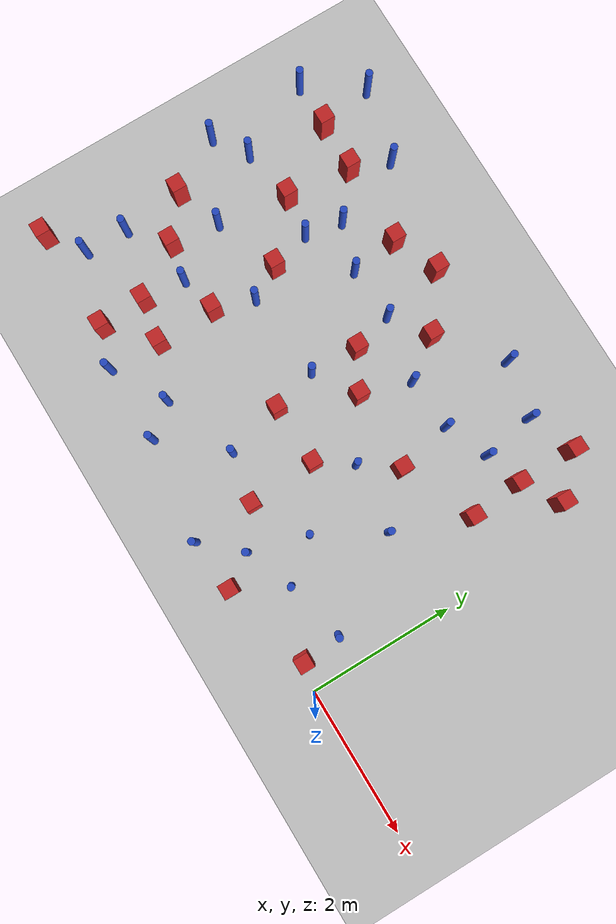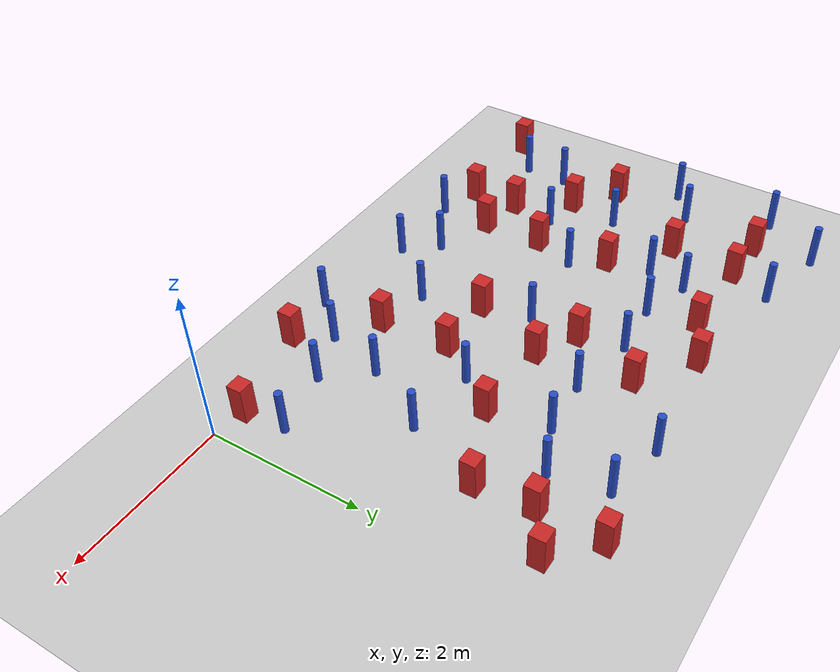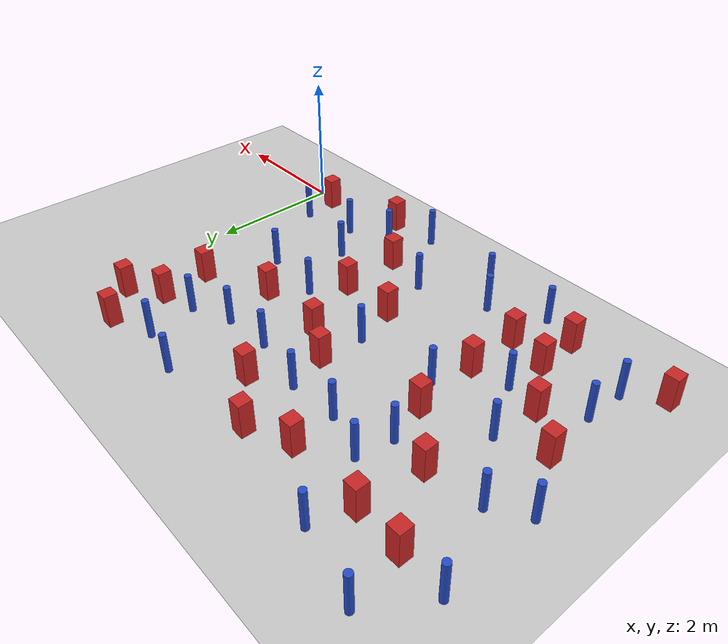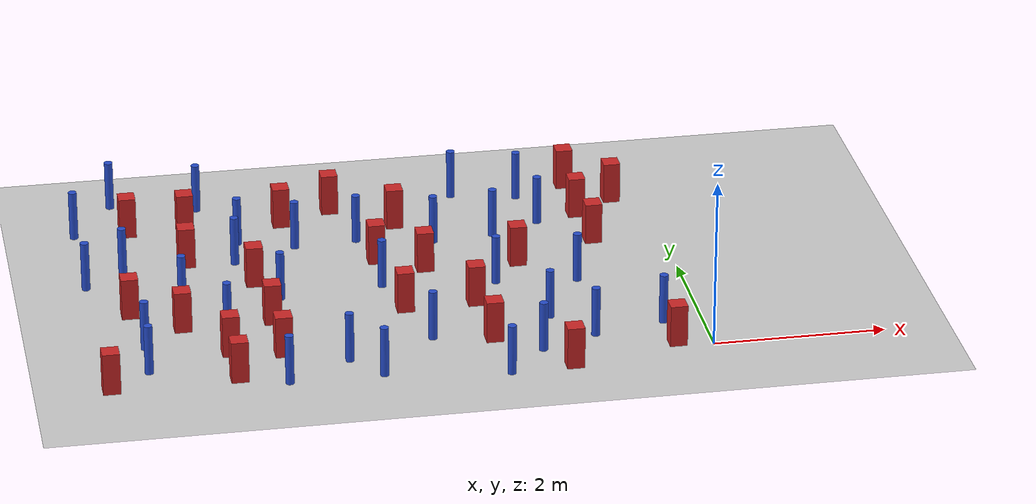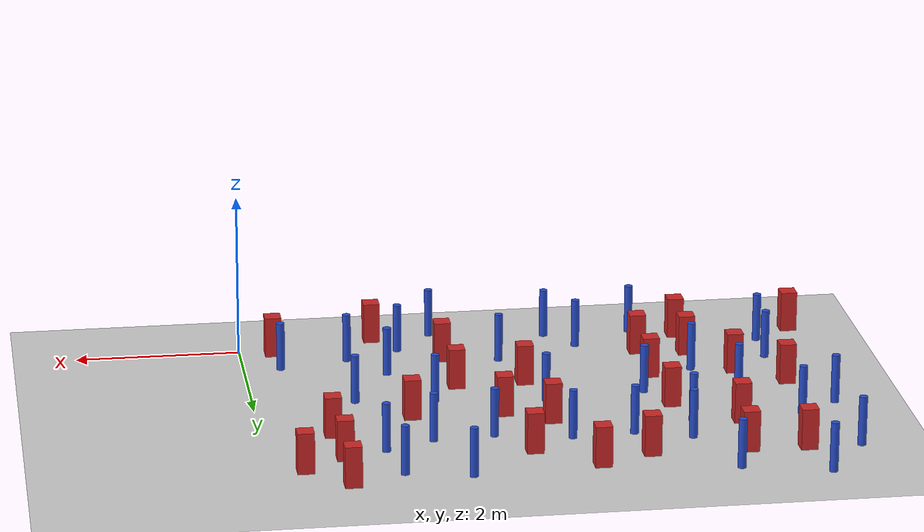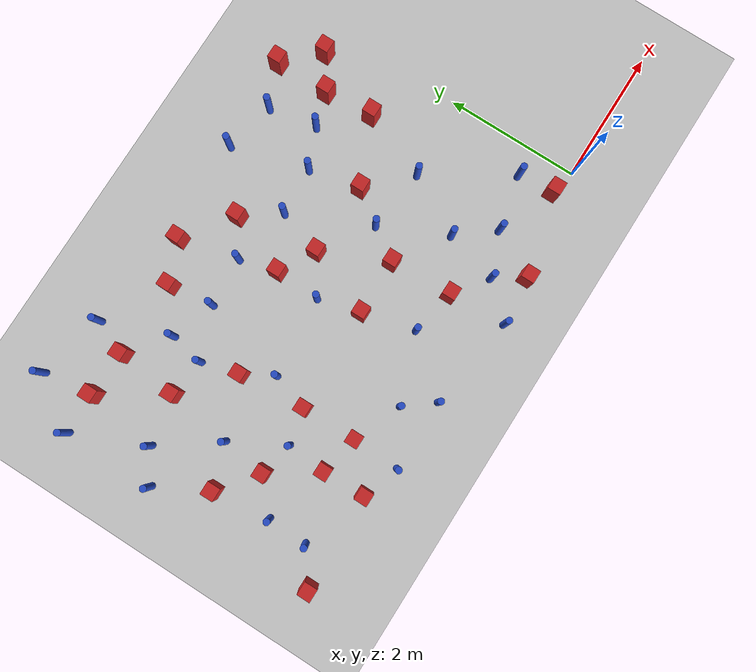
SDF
<sdf version="1.6">
 <world name="default">
  <model name="ground_plane">
   <static>1</static>
   <link name="link">
    <collision name="collision">
     <geometry><plane><normal>0 0 1</normal><size>100 100</size></plane></geometry>
     <surface><friction><ode><mu>100</mu><mu2>50</mu2></ode></friction></surface>
    </collision>
    <visual name="visual">
     <cast_shadows>0</cast_shadows>
     <geometry><plane><normal>0 0 1</normal><size>100 100</size></plane></geometry>
     <material>
      <ambient>1.0 1.0 1.0 1.0</ambient>
      <diffuse>0.8 0.8 0.8 1.0</diffuse>
      <specular>0.01 0.01 0.01 1.000000</specular>
     </material>
    </visual>
   </link>
  </model>
  <model name="pole_obstacle1">
   <static>true</static>
   <pose>-6.42929872795 2.91907934474 7.38925637345e-09 -8.47170692798e-08 1.24976764937e-08 -1.74513093023e-07</pose>
   <link name="link">
    <pose>0 0 0.3 0 -0 0</pose>
    <inertial>
     <mass>1</mass>
     <inertia><ixx>0.145833</ixx><ixy>0</ixy><ixz>0</ixz><iyy>0.145833</iyy><iyz>0</iyz><izz>0.125</izz></inertia>
    </inertial>
    <collision name="collision">
     <geometry><cylinder><radius>0.05</radius><length>.6</length></cylinder></geometry>
    </collision>
    <visual name="visual">
     <geometry><cylinder><radius>0.05</radius><length>.6</length></cylinder></geometry>
     <material>
      <script><name>Gazebo/Blue</name><uri>file://media/materials/scripts/gazebo.material</uri></script>
     </material>
    </visual>
   </link>
  </model>
  <model name="square_post_obstacle3">
   <static>true</static>
   <pose>-3.45899502006 2.76230181526 1.91545236811e-07 -7.35059704564e-06 1.12565212e-07 2.39332434364e-05</pose>
   <link name="link">
    <pose>0 0 0.25 0 -0 0</pose>
    <inertial>
     <mass>100</mass>
     <inertia>
      <ixx>0.166667</ixx>
      <ixy>0</ixy>
      <ixz>0</ixz>
      <iyy>0.166667</iyy>
      <iyz>0</iyz>
      <izz>0.166667</izz>
     </inertia>
    </inertial>
    <collision name="collision"><geometry><box><size>.2 .2 .5</size></box></geometry></collision>
    <visual name="visual">
     <geometry><box><size>.2 .2 .5</size></box></geometry>
     <material>
      <script><name>Gazebo/Red</name><uri>file://media/materials/scripts/gazebo.material</uri></script>
     </material>
    </visual>
   </link>
  </model>
  <model name="square_post_obstacle9">
   <static>true</static>
   <pose>-0.905078219884 3.59624943873 1.91545236811e-07 -7.35059704564e-06 1.12565212e-07 2.39332434364e-05</pose>
   <link name="link">
    <pose>0 0 0.25 0 -0 0</pose>
    <inertial>
     <mass>100</mass>
     <inertia>
      <ixx>0.166667</ixx>
      <ixy>0</ixy>
      <ixz>0</ixz>
      <iyy>0.166667</iyy>
      <iyz>0</iyz>
      <izz>0.166667</izz>
     </inertia>
    </inertial>
    <collision name="collision"><geometry><box><size>.2 .2 .5</size></box></geometry></collision>
    <visual name="visual">
     <geometry><box><size>.2 .2 .5</size></box></geometry>
     <material>
      <script><name>Gazebo/Red</name><uri>file://media/materials/scripts/gazebo.material</uri></script>
     </material>
    </visual>
   </link>
  </model>
  <model name="square_post_obstacle13">
   <static>true</static>
   <pose>-3.32114091501 1.47154276022 1.91545236811e-07 -7.35059704564e-06 1.12565212e-07 2.39332434364e-05</pose>
   <link name="link">
    <pose>0 0 0.25 0 -0 0</pose>
    <inertial>
     <mass>100</mass>
     <inertia>
      <ixx>0.166667</ixx>
      <ixy>0</ixy>
      <ixz>0</ixz>
      <iyy>0.166667</iyy>
      <iyz>0</iyz>
      <izz>0.166667</izz>
     </inertia>
    </inertial>
    <collision name="collision"><geometry><box><size>.2 .2 .5</size></box></geometry></collision>
    <visual name="visual">
     <geometry><box><size>.2 .2 .5</size></box></geometry>
     <material>
      <script><name>Gazebo/Red</name><uri>file://media/materials/scripts/gazebo.material</uri></script>
     </material>
    </visual>
   </link>
  </model>
  <model name="pole_obstacle9">
   <static>true</static>
   <pose>-4.87674963518 -0.105442005914 7.38925637345e-09 -8.47170692799e-08 1.24976765039e-08 -1.74513093019e-07</pose>
   <link name="link">
    <pose>0 0 0.3 0 -0 0</pose>
    <inertial>
     <mass>1</mass>
     <inertia><ixx>0.145833</ixx><ixy>0</ixy><ixz>0</ixz><iyy>0.145833</iyy><iyz>0</iyz><izz>0.125</izz></inertia>
    </inertial>
    <collision name="collision">
     <geometry><cylinder><radius>0.05</radius><length>.6</length></cylinder></geometry>
    </collision>
    <visual name="visual">
     <geometry><cylinder><radius>0.05</radius><length>.6</length></cylinder></geometry>
     <material>
      <script><name>Gazebo/Blue</name><uri>file://media/materials/scripts/gazebo.material</uri></script>
     </material>
    </visual>
   </link>
  </model>
  <model name="pole_obstacle14">
   <static>true</static>
   <pose>-1.28186081582 0.451107271071 7.38925637345e-09 -8.47170692799e-08 1.24976765052e-08 -1.74513093018e-07</pose>
   <link name="link">
    <pose>0 0 0.3 0 -0 0</pose>
    <inertial>
     <mass>1</mass>
     <inertia><ixx>0.145833</ixx><ixy>0</ixy><ixz>0</ixz><iyy>0.145833</iyy><iyz>0</iyz><izz>0.125</izz></inertia>
    </inertial>
    <collision name="collision">
     <geometry><cylinder><radius>0.05</radius><length>.6</length></cylinder></geometry>
    </collision>
    <visual name="visual">
     <geometry><cylinder><radius>0.05</radius><length>.6</length></cylinder></geometry>
     <material>
      <script><name>Gazebo/Blue</name><uri>file://media/materials/scripts/gazebo.material</uri></script>
     </material>
    </visual>
   </link>
  </model>
  <model name="square_post_obstacle27">
   <static>true</static>
   <pose>-4.94714250226 2.41971602822 1.91545236811e-07 -7.35059704564e-06 1.12565212e-07 2.39332434364e-05</pose>
   <link name="link">
    <pose>0 0 0.25 0 -0 0</pose>
    <inertial>
     <mass>100</mass>
     <inertia>
      <ixx>0.166667</ixx>
      <ixy>0</ixy>
      <ixz>0</ixz>
      <iyy>0.166667</iyy>
      <iyz>0</iyz>
      <izz>0.166667</izz>
     </inertia>
    </inertial>
    <collision name="collision"><geometry><box><size>.2 .2 .5</size></box></geometry></collision>
    <visual name="visual">
     <geometry><box><size>.2 .2 .5</size></box></geometry>
     <material>
      <script><name>Gazebo/Red</name><uri>file://media/materials/scripts/gazebo.material</uri></script>
     </material>
    </visual>
   </link>
  </model>
  <model name="square_post_obstacle29">
   <static>true</static>
   <pose>-5.66795134224 3.04842639544 1.91545236811e-07 -7.35059704564e-06 1.12565212e-07 2.39332434364e-05</pose>
   <link name="link">
    <pose>0 0 0.25 0 -0 0</pose>
    <inertial>
     <mass>100</mass>
     <inertia>
      <ixx>0.166667</ixx>
      <ixy>0</ixy>
      <ixz>0</ixz>
      <iyy>0.166667</iyy>
      <iyz>0</iyz>
      <izz>0.166667</izz>
     </inertia>
    </inertial>
    <collision name="collision"><geometry><box><size>.2 .2 .5</size></box></geometry></collision>
    <visual name="visual">
     <geometry><box><size>.2 .2 .5</size></box></geometry>
     <material>
      <script><name>Gazebo/Red</name><uri>file://media/materials/scripts/gazebo.material</uri></script>
     </material>
    </visual>
   </link>
  </model>
  <model name="pole_obstacle23">
   <static>true</static>
   <pose>-6.37870326389 1.003187122 7.38925637345e-09 -8.47170692801e-08 1.24976765139e-08 -1.74513093014e-07</pose>
   <link name="link">
    <pose>0 0 0.3 0 -0 0</pose>
    <inertial>
     <mass>1</mass>
     <inertia><ixx>0.145833</ixx><ixy>0</ixy><ixz>0</ixz><iyy>0.145833</iyy><iyz>0</iyz><izz>0.125</izz></inertia>
    </inertial>
    <collision name="collision">
     <geometry><cylinder><radius>0.05</radius><length>.6</length></cylinder></geometry>
    </collision>
    <visual name="visual">
     <geometry><cylinder><radius>0.05</radius><length>.6</length></cylinder></geometry>
     <material>
      <script><name>Gazebo/Blue</name><uri>file://media/materials/scripts/gazebo.material</uri></script>
     </material>
    </visual>
   </link>
  </model>
  <model name="square_post_obstacle34">
   <static>true</static>
   <pose>-4.85122570058 0.610705041201 1.91545236811e-07 -7.35059704564e-06 1.12565212e-07 2.39332434364e-05</pose>
   <link name="link">
    <pose>0 0 0.25 0 -0 0</pose>
    <inertial>
     <mass>100</mass>
     <inertia>
      <ixx>0.166667</ixx>
      <ixy>0</ixy>
      <ixz>0</ixz>
      <iyy>0.166667</iyy>
      <iyz>0</iyz>
      <izz>0.166667</izz>
     </inertia>
    </inertial>
    <collision name="collision"><geometry><box><size>.2 .2 .5</size></box></geometry></collision>
    <visual name="visual">
     <geometry><box><size>.2 .2 .5</size></box></geometry>
     <material>
      <script><name>Gazebo/Red</name><uri>file://media/materials/scripts/gazebo.material</uri></script>
     </material>
    </visual>
   </link>
  </model>
  <model name="pole_obstacle31">
   <static>true</static>
   <pose>-2.3887514129 -0.302699735705 7.38925637345e-09 -8.471706928e-08 1.24976765172e-08 -1.74513093013e-07</pose>
   <link name="link">
    <pose>0 0 0.3 0 -0 0</pose>
    <inertial>
     <mass>1</mass>
     <inertia><ixx>0.145833</ixx><ixy>0</ixy><ixz>0</ixz><iyy>0.145833</iyy><iyz>0</iyz><izz>0.125</izz></inertia>
    </inertial>
    <collision name="collision">
     <geometry><cylinder><radius>0.05</radius><length>.6</length></cylinder></geometry>
    </collision>
    <visual name="visual">
     <geometry><cylinder><radius>0.05</radius><length>.6</length></cylinder></geometry>
     <material>
      <script><name>Gazebo/Blue</name><uri>file://media/materials/scripts/gazebo.material</uri></script>
     </material>
    </visual>
   </link>
  </model>
  <model name="square_post_obstacle35">
   <static>true</static>
   <pose>-0.411803076474 3.93008149344 1.91545236811e-07 -7.35059704564e-06 1.12565212e-07 2.39332434364e-05</pose>
   <link name="link">
    <pose>0 0 0.25 0 -0 0</pose>
    <inertial>
     <mass>100</mass>
     <inertia>
      <ixx>0.166667</ixx>
      <ixy>0</ixy>
      <ixz>0</ixz>
      <iyy>0.166667</iyy>
      <iyz>0</iyz>
      <izz>0.166667</izz>
     </inertia>
    </inertial>
    <collision name="collision"><geometry><box><size>.2 .2 .5</size></box></geometry></collision>
    <visual name="visual">
     <geometry><box><size>.2 .2 .5</size></box></geometry>
     <material>
      <script><name>Gazebo/Red</name><uri>file://media/materials/scripts/gazebo.material</uri></script>
     </material>
    </visual>
   </link>
  </model>
  <model name="pole_obstacle34">
   <static>true</static>
   <pose>-1.2226400308 1.85764702001 7.38925637345e-09 -8.471706928e-08 1.24976765079e-08 -1.74513093017e-07</pose>
   <link name="link">
    <pose>0 0 0.3 0 -0 0</pose>
    <inertial>
     <mass>1</mass>
     <inertia><ixx>0.145833</ixx><ixy>0</ixy><ixz>0</ixz><iyy>0.145833</iyy><iyz>0</iyz><izz>0.125</izz></inertia>
    </inertial>
    <collision name="collision">
     <geometry><cylinder><radius>0.05</radius><length>.6</length></cylinder></geometry>
    </collision>
    <visual name="visual">
     <geometry><cylinder><radius>0.05</radius><length>.6</length></cylinder></geometry>
     <material>
      <script><name>Gazebo/Blue</name><uri>file://media/materials/scripts/gazebo.material</uri></script>
     </material>
    </visual>
   </link>
  </model>
  <model name="square_post_obstacle37">
   <static>true</static>
   <pose>-6.26416165376 3.97510742919 1.91545236811e-07 -7.35059704564e-06 1.12565212e-07 2.39332434364e-05</pose>
   <link name="link">
    <pose>0 0 0.25 0 -0 0</pose>
    <inertial>
     <mass>100</mass>
     <inertia>
      <ixx>0.166667</ixx>
      <ixy>0</ixy>
      <ixz>0</ixz>
      <iyy>0.166667</iyy>
      <iyz>0</iyz>
      <izz>0.166667</izz>
     </inertia>
    </inertial>
    <collision name="collision"><geometry><box><size>.2 .2 .5</size></box></geometry></collision>
    <visual name="visual">
     <geometry><box><size>.2 .2 .5</size></box></geometry>
     <material>
      <script><name>Gazebo/Red</name><uri>file://media/materials/scripts/gazebo.material</uri></script>
     </material>
    </visual>
   </link>
  </model>
  <model name="pole_obstacle38">
   <static>true</static>
   <pose>-1.53077043023 4.16529390376 7.38925637345e-09 -8.47170692799e-08 1.24976765033e-08 -1.74513093018e-07</pose>
   <link name="link">
    <pose>0 0 0.3 0 -0 0</pose>
    <inertial>
     <mass>1</mass>
     <inertia><ixx>0.145833</ixx><ixy>0</ixy><ixz>0</ixz><iyy>0.145833</iyy><iyz>0</iyz><izz>0.125</izz></inertia>
    </inertial>
    <collision name="collision">
     <geometry><cylinder><radius>0.05</radius><length>.6</length></cylinder></geometry>
    </collision>
    <visual name="visual">
     <geometry><cylinder><radius>0.05</radius><length>.6</length></cylinder></geometry>
     <material>
      <script><name>Gazebo/Blue</name><uri>file://media/materials/scripts/gazebo.material</uri></script>
     </material>
    </visual>
   </link>
  </model>
  <model name="pole_obstacle46">
   <static>true</static>
   <pose>-6.39907039299 0.407935088364 7.38925637345e-09 -8.47170692798e-08 1.24976765003e-08 -1.7451309302e-07</pose>
   <link name="link">
    <pose>0 0 0.3 0 -0 0</pose>
    <inertial>
     <mass>1</mass>
     <inertia><ixx>0.145833</ixx><ixy>0</ixy><ixz>0</ixz><iyy>0.145833</iyy><iyz>0</iyz><izz>0.125</izz></inertia>
    </inertial>
    <collision name="collision">
     <geometry><cylinder><radius>0.05</radius><length>.6</length></cylinder></geometry>
    </collision>
    <visual name="visual">
     <geometry><cylinder><radius>0.05</radius><length>.6</length></cylinder></geometry>
     <material>
      <script><name>Gazebo/Blue</name><uri>file://media/materials/scripts/gazebo.material</uri></script>
     </material>
    </visual>
   </link>
  </model>
  <model name="square_post_obstacle56">
   <static>true</static>
   <pose>-5.41984564283 0.0929354636823 1.91545236811e-07 -7.35059704564e-06 1.12565212e-07 2.39332434364e-05</pose>
   <link name="link">
    <pose>0 0 0.25 0 -0 0</pose>
    <inertial>
     <mass>100</mass>
     <inertia>
      <ixx>0.166667</ixx>
      <ixy>0</ixy>
      <ixz>0</ixz>
      <iyy>0.166667</iyy>
      <iyz>0</iyz>
      <izz>0.166667</izz>
     </inertia>
    </inertial>
    <collision name="collision"><geometry><box><size>.2 .2 .5</size></box></geometry></collision>
    <visual name="visual">
     <geometry><box><size>.2 .2 .5</size></box></geometry>
     <material>
      <script><name>Gazebo/Red</name><uri>file://media/materials/scripts/gazebo.material</uri></script>
     </material>
    </visual>
   </link>
  </model>
  <model name="pole_obstacle59">
   <static>true</static>
   <pose>-3.80341587537 -0.099427019695 7.38925637345e-09 -8.471706928e-08 1.24976765088e-08 -1.74513093017e-07</pose>
   <link name="link">
    <pose>0 0 0.3 0 -0 0</pose>
    <inertial>
     <mass>1</mass>
     <inertia><ixx>0.145833</ixx><ixy>0</ixy><ixz>0</ixz><iyy>0.145833</iyy><iyz>0</iyz><izz>0.125</izz></inertia>
    </inertial>
    <collision name="collision">
     <geometry><cylinder><radius>0.05</radius><length>.6</length></cylinder></geometry>
    </collision>
    <visual name="visual">
     <geometry><cylinder><radius>0.05</radius><length>.6</length></cylinder></geometry>
     <material>
      <script><name>Gazebo/Blue</name><uri>file://media/materials/scripts/gazebo.material</uri></script>
     </material>
    </visual>
   </link>
  </model>
  <model name="pole_obstacle60">
   <static>true</static>
   <pose>-5.37764012385 4.48237026212 7.38925637345e-09 -8.47170692796e-08 1.24976764786e-08 -1.74513093032e-07</pose>
   <link name="link">
    <pose>0 0 0.3 0 -0 0</pose>
    <inertial>
     <mass>1</mass>
     <inertia><ixx>0.145833</ixx><ixy>0</ixy><ixz>0</ixz><iyy>0.145833</iyy><iyz>0</iyz><izz>0.125</izz></inertia>
    </inertial>
    <collision name="collision">
     <geometry><cylinder><radius>0.05</radius><length>.6</length></cylinder></geometry>
    </collision>
    <visual name="visual">
     <geometry><cylinder><radius>0.05</radius><length>.6</length></cylinder></geometry>
     <material>
      <script><name>Gazebo/Blue</name><uri>file://media/materials/scripts/gazebo.material</uri></script>
     </material>
    </visual>
   </link>
  </model>
  <model name="square_post_obstacle71">
   <static>true</static>
   <pose>-6.46181713769 1.85665440524 1.91545236811e-07 -7.35059704564e-06 1.12565212e-07 2.39332434364e-05</pose>
   <link name="link">
    <pose>0 0 0.25 0 -0 0</pose>
    <inertial>
     <mass>100</mass>
     <inertia>
      <ixx>0.166667</ixx>
      <ixy>0</ixy>
      <ixz>0</ixz>
      <iyy>0.166667</iyy>
      <iyz>0</iyz>
      <izz>0.166667</izz>
     </inertia>
    </inertial>
    <collision name="collision"><geometry><box><size>.2 .2 .5</size></box></geometry></collision>
    <visual name="visual">
     <geometry><box><size>.2 .2 .5</size></box></geometry>
     <material>
      <script><name>Gazebo/Red</name><uri>file://media/materials/scripts/gazebo.material</uri></script>
     </material>
    </visual>
   </link>
  </model>
  <model name="pole_obstacle71">
   <static>true</static>
   <pose>-5.10175337997 2.97943975496 7.38925637345e-09 -8.47170692798e-08 1.24976764937e-08 -1.74513093023e-07</pose>
   <link name="link">
    <pose>0 0 0.3 0 -0 0</pose>
    <inertial>
     <mass>1</mass>
     <inertia><ixx>0.145833</ixx><ixy>0</ixy><ixz>0</ixz><iyy>0.145833</iyy><iyz>0</iyz><izz>0.125</izz></inertia>
    </inertial>
    <collision name="collision">
     <geometry><cylinder><radius>0.05</radius><length>.6</length></cylinder></geometry>
    </collision>
    <visual name="visual">
     <geometry><cylinder><radius>0.05</radius><length>.6</length></cylinder></geometry>
     <material>
      <script><name>Gazebo/Blue</name><uri>file://media/materials/scripts/gazebo.material</uri></script>
     </material>
    </visual>
   </link>
  </model>
  <model name="pole_obstacle86">
   <static>true</static>
   <pose>-2.71128011608 3.14274720544 7.38925637345e-09 -8.47170692798e-08 1.24976764939e-08 -1.74513093025e-07</pose>
   <link name="link">
    <pose>0 0 0.3 0 -0 0</pose>
    <inertial>
     <mass>1</mass>
     <inertia><ixx>0.145833</ixx><ixy>0</ixy><ixz>0</ixz><iyy>0.145833</iyy><iyz>0</iyz><izz>0.125</izz></inertia>
    </inertial>
    <collision name="collision">
     <geometry><cylinder><radius>0.05</radius><length>.6</length></cylinder></geometry>
    </collision>
    <visual name="visual">
     <geometry><cylinder><radius>0.05</radius><length>.6</length></cylinder></geometry>
     <material>
      <script><name>Gazebo/Blue</name><uri>file://media/materials/scripts/gazebo.material</uri></script>
     </material>
    </visual>
   </link>
  </model>
  <model name="pole_obstacle91">
   <static>true</static>
   <pose>-1.98816987569 3.19674884291 7.38925637345e-09 -8.471706928e-08 1.24976765192e-08 -1.7451309301e-07</pose>
   <link name="link">
    <pose>0 0 0.3 0 -0 0</pose>
    <inertial>
     <mass>1</mass>
     <inertia><ixx>0.145833</ixx><ixy>0</ixy><ixz>0</ixz><iyy>0.145833</iyy><iyz>0</iyz><izz>0.125</izz></inertia>
    </inertial>
    <collision name="collision">
     <geometry><cylinder><radius>0.05</radius><length>.6</length></cylinder></geometry>
    </collision>
    <visual name="visual">
     <geometry><cylinder><radius>0.05</radius><length>.6</length></cylinder></geometry>
     <material>
      <script><name>Gazebo/Blue</name><uri>file://media/materials/scripts/gazebo.material</uri></script>
     </material>
    </visual>
   </link>
  </model>
  <model name="square_post_obstacle88">
   <static>true</static>
   <pose>-4.86676787025 1.42821196705 1.91545236811e-07 -7.35059704564e-06 1.12565212e-07 2.39332434364e-05</pose>
   <link name="link">
    <pose>0 0 0.25 0 -0 0</pose>
    <inertial>
     <mass>100</mass>
     <inertia>
      <ixx>0.166667</ixx>
      <ixy>0</ixy>
      <ixz>0</ixz>
      <iyy>0.166667</iyy>
      <iyz>0</iyz>
      <izz>0.166667</izz>
     </inertia>
    </inertial>
    <collision name="collision"><geometry><box><size>.2 .2 .5</size></box></geometry></collision>
    <visual name="visual">
     <geometry><box><size>.2 .2 .5</size></box></geometry>
     <material>
      <script><name>Gazebo/Red</name><uri>file://media/materials/scripts/gazebo.material</uri></script>
     </material>
    </visual>
   </link>
  </model>
  <model name="square_post_obstacle89">
   <static>true</static>
   <pose>-0.843859062542 2.87030625884 1.91545236811e-07 -7.35059704564e-06 1.12565212e-07 2.39332434364e-05</pose>
   <link name="link">
    <pose>0 0 0.25 0 -0 0</pose>
    <inertial>
     <mass>100</mass>
     <inertia>
      <ixx>0.166667</ixx>
      <ixy>0</ixy>
      <ixz>0</ixz>
      <iyy>0.166667</iyy>
      <iyz>0</iyz>
      <izz>0.166667</izz>
     </inertia>
    </inertial>
    <collision name="collision"><geometry><box><size>.2 .2 .5</size></box></geometry></collision>
    <visual name="visual">
     <geometry><box><size>.2 .2 .5</size></box></geometry>
     <material>
      <script><name>Gazebo/Red</name><uri>file://media/materials/scripts/gazebo.material</uri></script>
     </material>
    </visual>
   </link>
  </model>
  <model name="square_post_obstacle91">
   <static>true</static>
   <pose>-4.43189016322 3.92689744343 1.91545236811e-07 -7.35059704564e-06 1.12565212e-07 2.39332434364e-05</pose>
   <link name="link">
    <pose>0 0 0.25 0 -0 0</pose>
    <inertial>
     <mass>100</mass>
     <inertia>
      <ixx>0.166667</ixx>
      <ixy>0</ixy>
      <ixz>0</ixz>
      <iyy>0.166667</iyy>
      <iyz>0</iyz>
      <izz>0.166667</izz>
     </inertia>
    </inertial>
    <collision name="collision"><geometry><box><size>.2 .2 .5</size></box></geometry></collision>
    <visual name="visual">
     <geometry><box><size>.2 .2 .5</size></box></geometry>
     <material>
      <script><name>Gazebo/Red</name><uri>file://media/materials/scripts/gazebo.material</uri></script>
     </material>
    </visual>
   </link>
  </model>
  <model name="pole_obstacle106">
   <static>true</static>
   <pose>-6.39444204987 4.7351012062 7.38925637345e-09 -8.47170692796e-08 1.24976764786e-08 -1.74513093032e-07</pose>
   <link name="link">
    <pose>0 0 0.3 0 -0 0</pose>
    <inertial>
     <mass>1</mass>
     <inertia><ixx>0.145833</ixx><ixy>0</ixy><ixz>0</ixz><iyy>0.145833</iyy><iyz>0</iyz><izz>0.125</izz></inertia>
    </inertial>
    <collision name="collision">
     <geometry><cylinder><radius>0.05</radius><length>.6</length></cylinder></geometry>
    </collision>
    <visual name="visual">
     <geometry><cylinder><radius>0.05</radius><length>.6</length></cylinder></geometry>
     <material>
      <script><name>Gazebo/Blue</name><uri>file://media/materials/scripts/gazebo.material</uri></script>
     </material>
    </visual>
   </link>
  </model>
  <model name="square_post_obstacle94">
   <static>true</static>
   <pose>-5.43924046131 0.729255636724 1.91545236811e-07 -7.35059704564e-06 1.12565212e-07 2.39332434364e-05</pose>
   <link name="link">
    <pose>0 0 0.25 0 -0 0</pose>
    <inertial>
     <mass>100</mass>
     <inertia>
      <ixx>0.166667</ixx>
      <ixy>0</ixy>
      <ixz>0</ixz>
      <iyy>0.166667</iyy>
      <iyz>0</iyz>
      <izz>0.166667</izz>
     </inertia>
    </inertial>
    <collision name="collision"><geometry><box><size>.2 .2 .5</size></box></geometry></collision>
    <visual name="visual">
     <geometry><box><size>.2 .2 .5</size></box></geometry>
     <material>
      <script><name>Gazebo/Red</name><uri>file://media/materials/scripts/gazebo.material</uri></script>
     </material>
    </visual>
   </link>
  </model>
  <model name="pole_obstacle113">
   <static>true</static>
   <pose>-3.48798788129 2.09356775168 7.38925637345e-09 -8.47170692798e-08 1.24976764939e-08 -1.74513093025e-07</pose>
   <link name="link">
    <pose>0 0 0.3 0 -0 0</pose>
    <inertial>
     <mass>1</mass>
     <inertia><ixx>0.145833</ixx><ixy>0</ixy><ixz>0</ixz><iyy>0.145833</iyy><iyz>0</iyz><izz>0.125</izz></inertia>
    </inertial>
    <collision name="collision">
     <geometry><cylinder><radius>0.05</radius><length>.6</length></cylinder></geometry>
    </collision>
    <visual name="visual">
     <geometry><cylinder><radius>0.05</radius><length>.6</length></cylinder></geometry>
     <material>
      <script><name>Gazebo/Blue</name><uri>file://media/materials/scripts/gazebo.material</uri></script>
     </material>
    </visual>
   </link>
  </model>
  <model name="pole_obstacle115">
   <static>true</static>
   <pose>-5.00482750813 3.49224283118 7.38925637345e-09 -8.47170692798e-08 1.24976764937e-08 -1.74513093023e-07</pose>
   <link name="link">
    <pose>0 0 0.3 0 -0 0</pose>
    <inertial>
     <mass>1</mass>
     <inertia><ixx>0.145833</ixx><ixy>0</ixy><ixz>0</ixz><iyy>0.145833</iyy><iyz>0</iyz><izz>0.125</izz></inertia>
    </inertial>
    <collision name="collision">
     <geometry><cylinder><radius>0.05</radius><length>.6</length></cylinder></geometry>
    </collision>
    <visual name="visual">
     <geometry><cylinder><radius>0.05</radius><length>.6</length></cylinder></geometry>
     <material>
      <script><name>Gazebo/Blue</name><uri>file://media/materials/scripts/gazebo.material</uri></script>
     </material>
    </visual>
   </link>
  </model>
  <model name="pole_obstacle117">
   <static>true</static>
   <pose>-3.12382348454 0.686818389979 7.38925637345e-09 -8.47170692796e-08 1.24976764768e-08 -1.74513093035e-07</pose>
   <link name="link">
    <pose>0 0 0.3 0 -0 0</pose>
    <inertial>
     <mass>1</mass>
     <inertia><ixx>0.145833</ixx><ixy>0</ixy><ixz>0</ixz><iyy>0.145833</iyy><iyz>0</iyz><izz>0.125</izz></inertia>
    </inertial>
    <collision name="collision">
     <geometry><cylinder><radius>0.05</radius><length>.6</length></cylinder></geometry>
    </collision>
    <visual name="visual">
     <geometry><cylinder><radius>0.05</radius><length>.6</length></cylinder></geometry>
     <material>
      <script><name>Gazebo/Blue</name><uri>file://media/materials/scripts/gazebo.material</uri></script>
     </material>
    </visual>
   </link>
  </model>
  <model name="square_post_obstacle115">
   <static>true</static>
   <pose>-1.83066203352 2.4305576948 1.91545236811e-07 -7.35059704564e-06 1.12565212e-07 2.39332434364e-05</pose>
   <link name="link">
    <pose>0 0 0.25 0 -0 0</pose>
    <inertial>
     <mass>100</mass>
     <inertia>
      <ixx>0.166667</ixx>
      <ixy>0</ixy>
      <ixz>0</ixz>
      <iyy>0.166667</iyy>
      <iyz>0</iyz>
      <izz>0.166667</izz>
     </inertia>
    </inertial>
    <collision name="collision"><geometry><box><size>.2 .2 .5</size></box></geometry></collision>
    <visual name="visual">
     <geometry><box><size>.2 .2 .5</size></box></geometry>
     <material>
      <script><name>Gazebo/Red</name><uri>file://media/materials/scripts/gazebo.material</uri></script>
     </material>
    </visual>
   </link>
  </model>
  <model name="square_post_obstacle118">
   <static>true</static>
   <pose>-6.86207884505 0.0603589458827 1.91545236811e-07 -7.35059704564e-06 1.12565212e-07 2.39332434364e-05</pose>
   <link name="link">
    <pose>0 0 0.25 0 -0 0</pose>
    <inertial>
     <mass>100</mass>
     <inertia>
      <ixx>0.166667</ixx>
      <ixy>0</ixy>
      <ixz>0</ixz>
      <iyy>0.166667</iyy>
      <iyz>0</iyz>
      <izz>0.166667</izz>
     </inertia>
    </inertial>
    <collision name="collision"><geometry><box><size>.2 .2 .5</size></box></geometry></collision>
    <visual name="visual">
     <geometry><box><size>.2 .2 .5</size></box></geometry>
     <material>
      <script><name>Gazebo/Red</name><uri>file://media/materials/scripts/gazebo.material</uri></script>
     </material>
    </visual>
   </link>
  </model>
  <model name="square_post_obstacle130">
   <static>true</static>
   <pose>-2.4872901993 1.491964853 1.91545236811e-07 -7.35059704564e-06 1.12565212e-07 2.39332434364e-05</pose>
   <link name="link">
    <pose>0 0 0.25 0 -0 0</pose>
    <inertial>
     <mass>100</mass>
     <inertia>
      <ixx>0.166667</ixx>
      <ixy>0</ixy>
      <ixz>0</ixz>
      <iyy>0.166667</iyy>
      <iyz>0</iyz>
      <izz>0.166667</izz>
     </inertia>
    </inertial>
    <collision name="collision"><geometry><box><size>.2 .2 .5</size></box></geometry></collision>
    <visual name="visual">
     <geometry><box><size>.2 .2 .5</size></box></geometry>
     <material>
      <script><name>Gazebo/Red</name><uri>file://media/materials/scripts/gazebo.material</uri></script>
     </material>
    </visual>
   </link>
  </model>
  <model name="square_post_obstacle134">
   <static>true</static>
   <pose>-5.58075830734 3.94838361912 1.91545236811e-07 -7.35059704564e-06 1.12565212e-07 2.39332434364e-05</pose>
   <link name="link">
    <pose>0 0 0.25 0 -0 0</pose>
    <inertial>
     <mass>100</mass>
     <inertia>
      <ixx>0.166667</ixx>
      <ixy>0</ixy>
      <ixz>0</ixz>
      <iyy>0.166667</iyy>
      <iyz>0</iyz>
      <izz>0.166667</izz>
     </inertia>
    </inertial>
    <collision name="collision"><geometry><box><size>.2 .2 .5</size></box></geometry></collision>
    <visual name="visual">
     <geometry><box><size>.2 .2 .5</size></box></geometry>
     <material>
      <script><name>Gazebo/Red</name><uri>file://media/materials/scripts/gazebo.material</uri></script>
     </material>
    </visual>
   </link>
  </model>
  <model name="pole_obstacle163">
   <static>true</static>
   <pose>-3.60884439849 3.32268427514 7.38925637345e-09 -8.471706928e-08 1.24976765098e-08 -1.74513093016e-07</pose>
   <link name="link">
    <pose>0 0 0.3 0 -0 0</pose>
    <inertial>
     <mass>1</mass>
     <inertia><ixx>0.145833</ixx><ixy>0</ixy><ixz>0</ixz><iyy>0.145833</iyy><iyz>0</iyz><izz>0.125</izz></inertia>
    </inertial>
    <collision name="collision">
     <geometry><cylinder><radius>0.05</radius><length>.6</length></cylinder></geometry>
    </collision>
    <visual name="visual">
     <geometry><cylinder><radius>0.05</radius><length>.6</length></cylinder></geometry>
     <material>
      <script><name>Gazebo/Blue</name><uri>file://media/materials/scripts/gazebo.material</uri></script>
     </material>
    </visual>
   </link>
  </model>
  <model name="square_post_obstacle167">
   <static>true</static>
   <pose>-0.902966533152 4.4115875428 1.91545236811e-07 -7.35059704564e-06 1.12565212e-07 2.39332434364e-05</pose>
   <link name="link">
    <pose>0 0 0.25 0 -0 0</pose>
    <inertial>
     <mass>100</mass>
     <inertia>
      <ixx>0.166667</ixx>
      <ixy>0</ixy>
      <ixz>0</ixz>
      <iyy>0.166667</iyy>
      <iyz>0</iyz>
      <izz>0.166667</izz>
     </inertia>
    </inertial>
    <collision name="collision"><geometry><box><size>.2 .2 .5</size></box></geometry></collision>
    <visual name="visual">
     <geometry><box><size>.2 .2 .5</size></box></geometry>
     <material>
      <script><name>Gazebo/Red</name><uri>file://media/materials/scripts/gazebo.material</uri></script>
     </material>
    </visual>
   </link>
  </model>
  <model name="square_post_obstacle172">
   <static>true</static>
   <pose>-2.43922542195 0.563067947031 1.91545236811e-07 -7.35059704564e-06 1.12565212e-07 2.39332434364e-05</pose>
   <link name="link">
    <pose>0 0 0.25 0 -0 0</pose>
    <inertial>
     <mass>100</mass>
     <inertia>
      <ixx>0.166667</ixx>
      <ixy>0</ixy>
      <ixz>0</ixz>
      <iyy>0.166667</iyy>
      <iyz>0</iyz>
      <izz>0.166667</izz>
     </inertia>
    </inertial>
    <collision name="collision"><geometry><box><size>.2 .2 .5</size></box></geometry></collision>
    <visual name="visual">
     <geometry><box><size>.2 .2 .5</size></box></geometry>
     <material>
      <script><name>Gazebo/Red</name><uri>file://media/materials/scripts/gazebo.material</uri></script>
     </material>
    </visual>
   </link>
  </model>
  <model name="pole_obstacle185">
   <static>true</static>
   <pose>-5.39844158285 1.31036806387 7.38925637345e-09 -8.471706928e-08 1.24976765134e-08 -1.74513093015e-07</pose>
   <link name="link">
    <pose>0 0 0.3 0 -0 0</pose>
    <inertial>
     <mass>1</mass>
     <inertia><ixx>0.145833</ixx><ixy>0</ixy><ixz>0</ixz><iyy>0.145833</iyy><iyz>0</iyz><izz>0.125</izz></inertia>
    </inertial>
    <collision name="collision">
     <geometry><cylinder><radius>0.05</radius><length>.6</length></cylinder></geometry>
    </collision>
    <visual name="visual">
     <geometry><cylinder><radius>0.05</radius><length>.6</length></cylinder></geometry>
     <material>
      <script><name>Gazebo/Blue</name><uri>file://media/materials/scripts/gazebo.material</uri></script>
     </material>
    </visual>
   </link>
  </model>
  <model name="pole_obstacle187">
   <static>true</static>
   <pose>-4.34839817066 3.27733396465 7.38925637345e-09 -8.47170692798e-08 1.24976764937e-08 -1.74513093023e-07</pose>
   <link name="link">
    <pose>0 0 0.3 0 -0 0</pose>
    <inertial>
     <mass>1</mass>
     <inertia><ixx>0.145833</ixx><ixy>0</ixy><ixz>0</ixz><iyy>0.145833</iyy><iyz>0</iyz><izz>0.125</izz></inertia>
    </inertial>
    <collision name="collision">
     <geometry><cylinder><radius>0.05</radius><length>.6</length></cylinder></geometry>
    </collision>
    <visual name="visual">
     <geometry><cylinder><radius>0.05</radius><length>.6</length></cylinder></geometry>
     <material>
      <script><name>Gazebo/Blue</name><uri>file://media/materials/scripts/gazebo.material</uri></script>
     </material>
    </visual>
   </link>
  </model>
  <model name="square_post_obstacle173">
   <static>true</static>
   <pose>-2.92925294606 2.46189288258 1.91545236811e-07 -7.35059704564e-06 1.12565212e-07 2.39332434364e-05</pose>
   <link name="link">
    <pose>0 0 0.25 0 -0 0</pose>
    <inertial>
     <mass>100</mass>
     <inertia>
      <ixx>0.166667</ixx>
      <ixy>0</ixy>
      <ixz>0</ixz>
      <iyy>0.166667</iyy>
      <iyz>0</iyz>
      <izz>0.166667</izz>
     </inertia>
    </inertial>
    <collision name="collision"><geometry><box><size>.2 .2 .5</size></box></geometry></collision>
    <visual name="visual">
     <geometry><box><size>.2 .2 .5</size></box></geometry>
     <material>
      <script><name>Gazebo/Red</name><uri>file://media/materials/scripts/gazebo.material</uri></script>
     </material>
    </visual>
   </link>
  </model>
  <model name="square_post_obstacle177">
   <static>true</static>
   <pose>-0.406898581223 0.105148186506 1.91545236811e-07 -7.35059704564e-06 1.12565212e-07 2.39332434364e-05</pose>
   <link name="link">
    <pose>0 0 0.25 0 -0 0</pose>
    <inertial>
     <mass>100</mass>
     <inertia>
      <ixx>0.166667</ixx>
      <ixy>0</ixy>
      <ixz>0</ixz>
      <iyy>0.166667</iyy>
      <iyz>0</iyz>
      <izz>0.166667</izz>
     </inertia>
    </inertial>
    <collision name="collision"><geometry><box><size>.2 .2 .5</size></box></geometry></collision>
    <visual name="visual">
     <geometry><box><size>.2 .2 .5</size></box></geometry>
     <material>
      <script><name>Gazebo/Red</name><uri>file://media/materials/scripts/gazebo.material</uri></script>
     </material>
    </visual>
   </link>
  </model>
  <model name="square_post_obstacle179">
   <static>true</static>
   <pose>-3.81088422203 4.18972861012 1.91545236811e-07 -7.35059704564e-06 1.12565212e-07 2.39332434364e-05</pose>
   <link name="link">
    <pose>0 0 0.25 0 -0 0</pose>
    <inertial>
     <mass>100</mass>
     <inertia>
      <ixx>0.166667</ixx>
      <ixy>0</ixy>
      <ixz>0</ixz>
      <iyy>0.166667</iyy>
      <iyz>0</iyz>
      <izz>0.166667</izz>
     </inertia>
    </inertial>
    <collision name="collision"><geometry><box><size>.2 .2 .5</size></box></geometry></collision>
    <visual name="visual">
     <geometry><box><size>.2 .2 .5</size></box></geometry>
     <material>
      <script><name>Gazebo/Red</name><uri>file://media/materials/scripts/gazebo.material</uri></script>
     </material>
    </visual>
   </link>
  </model>
  <model name="square_post_obstacle203">
   <static>true</static>
   <pose>-3.10211780589 3.66649364424 1.91545236811e-07 -7.35059704564e-06 1.12565212e-07 2.39332434364e-05</pose>
   <link name="link">
    <pose>0 0 0.25 0 -0 0</pose>
    <inertial>
     <mass>100</mass>
     <inertia>
      <ixx>0.166667</ixx>
      <ixy>0</ixy>
      <ixz>0</ixz>
      <iyy>0.166667</iyy>
      <iyz>0</iyz>
      <izz>0.166667</izz>
     </inertia>
    </inertial>
    <collision name="collision"><geometry><box><size>.2 .2 .5</size></box></geometry></collision>
    <visual name="visual">
     <geometry><box><size>.2 .2 .5</size></box></geometry>
     <material>
      <script><name>Gazebo/Red</name><uri>file://media/materials/scripts/gazebo.material</uri></script>
     </material>
    </visual>
   </link>
  </model>
  <model name="pole_obstacle188">
   <static>true</static>
   <pose>-2.29909499704 4.33687355534 7.38925637345e-09 -8.47170692798e-08 1.24976765033e-08 -1.74513093019e-07</pose>
   <link name="link">
    <pose>0 0 0.3 0 -0 0</pose>
    <inertial>
     <mass>1</mass>
     <inertia><ixx>0.145833</ixx><ixy>0</ixy><ixz>0</ixz><iyy>0.145833</iyy><iyz>0</iyz><izz>0.125</izz></inertia>
    </inertial>
    <collision name="collision">
     <geometry><cylinder><radius>0.05</radius><length>.6</length></cylinder></geometry>
    </collision>
    <visual name="visual">
     <geometry><cylinder><radius>0.05</radius><length>.6</length></cylinder></geometry>
     <material>
      <script><name>Gazebo/Blue</name><uri>file://media/materials/scripts/gazebo.material</uri></script>
     </material>
    </visual>
   </link>
  </model>
  <model name="pole_obstacle194">
   <static>true</static>
   <pose>-2.16783773664 1.95813691796 7.38925637345e-09 -8.47170692799e-08 1.24976764986e-08 -1.74513093023e-07</pose>
   <link name="link">
    <pose>0 0 0.3 0 -0 0</pose>
    <inertial>
     <mass>1</mass>
     <inertia><ixx>0.145833</ixx><ixy>0</ixy><ixz>0</ixz><iyy>0.145833</iyy><iyz>0</iyz><izz>0.125</izz></inertia>
    </inertial>
    <collision name="collision">
     <geometry><cylinder><radius>0.05</radius><length>.6</length></cylinder></geometry>
    </collision>
    <visual name="visual">
     <geometry><cylinder><radius>0.05</radius><length>.6</length></cylinder></geometry>
     <material>
      <script><name>Gazebo/Blue</name><uri>file://media/materials/scripts/gazebo.material</uri></script>
     </material>
    </visual>
   </link>
  </model>
  <model name="square_post_obstacle207">
   <static>true</static>
   <pose>-5.90383634385 1.41653843331 1.91545236811e-07 -7.35059704564e-06 1.12565212e-07 2.39332434364e-05</pose>
   <link name="link">
    <pose>0 0 0.25 0 -0 0</pose>
    <inertial>
     <mass>100</mass>
     <inertia>
      <ixx>0.166667</ixx>
      <ixy>0</ixy>
      <ixz>0</ixz>
      <iyy>0.166667</iyy>
      <iyz>0</iyz>
      <izz>0.166667</izz>
     </inertia>
    </inertial>
    <collision name="collision"><geometry><box><size>.2 .2 .5</size></box></geometry></collision>
    <visual name="visual">
     <geometry><box><size>.2 .2 .5</size></box></geometry>
     <material>
      <script><name>Gazebo/Red</name><uri>file://media/materials/scripts/gazebo.material</uri></script>
     </material>
    </visual>
   </link>
  </model>
  <model name="square_post_obstacle209">
   <static>true</static>
   <pose>-1.65836365965 -0.224939953784 1.91545236811e-07 -7.35059704564e-06 1.12565212e-07 2.39332434364e-05</pose>
   <link name="link">
    <pose>0 0 0.25 0 -0 0</pose>
    <inertial>
     <mass>100</mass>
     <inertia>
      <ixx>0.166667</ixx>
      <ixy>0</ixy>
      <ixz>0</ixz>
      <iyy>0.166667</iyy>
      <iyz>0</iyz>
      <izz>0.166667</izz>
     </inertia>
    </inertial>
    <collision name="collision"><geometry><box><size>.2 .2 .5</size></box></geometry></collision>
    <visual name="visual">
     <geometry><box><size>.2 .2 .5</size></box></geometry>
     <material>
      <script><name>Gazebo/Red</name><uri>file://media/materials/scripts/gazebo.material</uri></script>
     </material>
    </visual>
   </link>
  </model>
  <model name="pole_obstacle207">
   <static>true</static>
   <pose>-1.93495674443 0.193528525745 7.38925637345e-09 -8.47170692799e-08 1.24976765003e-08 -1.7451309302e-07</pose>
   <link name="link">
    <pose>0 0 0.3 0 -0 0</pose>
    <inertial>
     <mass>1</mass>
     <inertia><ixx>0.145833</ixx><ixy>0</ixy><ixz>0</ixz><iyy>0.145833</iyy><iyz>0</iyz><izz>0.125</izz></inertia>
    </inertial>
    <collision name="collision">
     <geometry><cylinder><radius>0.05</radius><length>.6</length></cylinder></geometry>
    </collision>
    <visual name="visual">
     <geometry><cylinder><radius>0.05</radius><length>.6</length></cylinder></geometry>
     <material>
      <script><name>Gazebo/Blue</name><uri>file://media/materials/scripts/gazebo.material</uri></script>
     </material>
    </visual>
   </link>
  </model>
  <model name="pole_obstacle209">
   <static>true</static>
   <pose>-6.89196007005 2.61418318391 7.38925637345e-09 -8.47170692798e-08 1.24976764937e-08 -1.74513093023e-07</pose>
   <link name="link">
    <pose>0 0 0.3 0 -0 0</pose>
    <inertial>
     <mass>1</mass>
     <inertia><ixx>0.145833</ixx><ixy>0</ixy><ixz>0</ixz><iyy>0.145833</iyy><iyz>0</iyz><izz>0.125</izz></inertia>
    </inertial>
    <collision name="collision">
     <geometry><cylinder><radius>0.05</radius><length>.6</length></cylinder></geometry>
    </collision>
    <visual name="visual">
     <geometry><cylinder><radius>0.05</radius><length>.6</length></cylinder></geometry>
     <material>
      <script><name>Gazebo/Blue</name><uri>file://media/materials/scripts/gazebo.material</uri></script>
     </material>
    </visual>
   </link>
  </model>
  <model name="pole_obstacle212">
   <static>true</static>
   <pose>-5.82848908648 2.08574626805 7.38925637345e-09 -8.47170692798e-08 1.24976764937e-08 -1.74513093023e-07</pose>
   <link name="link">
    <pose>0 0 0.3 0 -0 0</pose>
    <inertial>
     <mass>1</mass>
     <inertia><ixx>0.145833</ixx><ixy>0</ixy><ixz>0</ixz><iyy>0.145833</iyy><iyz>0</iyz><izz>0.125</izz></inertia>
    </inertial>
    <collision name="collision">
     <geometry><cylinder><radius>0.05</radius><length>.6</length></cylinder></geometry>
    </collision>
    <visual name="visual">
     <geometry><cylinder><radius>0.05</radius><length>.6</length></cylinder></geometry>
     <material>
      <script><name>Gazebo/Blue</name><uri>file://media/materials/scripts/gazebo.material</uri></script>
     </material>
    </visual>
   </link>
  </model>
  <model name="pole_obstacle213">
   <static>true</static>
   <pose>-1.71288637661 0.981684080404 7.38925637345e-09 -8.47170692799e-08 1.24976765135e-08 -1.74513093013e-07</pose>
   <link name="link">
    <pose>0 0 0.3 0 -0 0</pose>
    <inertial>
     <mass>1</mass>
     <inertia><ixx>0.145833</ixx><ixy>0</ixy><ixz>0</ixz><iyy>0.145833</iyy><iyz>0</iyz><izz>0.125</izz></inertia>
    </inertial>
    <collision name="collision">
     <geometry><cylinder><radius>0.05</radius><length>.6</length></cylinder></geometry>
    </collision>
    <visual name="visual">
     <geometry><cylinder><radius>0.05</radius><length>.6</length></cylinder></geometry>
     <material>
      <script><name>Gazebo/Blue</name><uri>file://media/materials/scripts/gazebo.material</uri></script>
     </material>
    </visual>
   </link>
  </model>
  <model name="pole_obstacle214">
   <static>true</static>
   <pose>-1.40313793418 3.44839984495 7.38925637345e-09 -8.47170692799e-08 1.24976765053e-08 -1.74513093017e-07</pose>
   <link name="link">
    <pose>0 0 0.3 0 -0 0</pose>
    <inertial>
     <mass>1</mass>
     <inertia><ixx>0.145833</ixx><ixy>0</ixy><ixz>0</ixz><iyy>0.145833</iyy><iyz>0</iyz><izz>0.125</izz></inertia>
    </inertial>
    <collision name="collision">
     <geometry><cylinder><radius>0.05</radius><length>.6</length></cylinder></geometry>
    </collision>
    <visual name="visual">
     <geometry><cylinder><radius>0.05</radius><length>.6</length></cylinder></geometry>
     <material>
      <script><name>Gazebo/Blue</name><uri>file://media/materials/scripts/gazebo.material</uri></script>
     </material>
    </visual>
   </link>
  </model>
  <model name="pole_obstacle218">
   <static>true</static>
   <pose>-4.69601594514 1.9767251272 7.38925637345e-09 -8.471706928e-08 1.24976765177e-08 -1.74513093012e-07</pose>
   <link name="link">
    <pose>0 0 0.3 0 -0 0</pose>
    <inertial>
     <mass>1</mass>
     <inertia><ixx>0.145833</ixx><ixy>0</ixy><ixz>0</ixz><iyy>0.145833</iyy><iyz>0</iyz><izz>0.125</izz></inertia>
    </inertial>
    <collision name="collision">
     <geometry><cylinder><radius>0.05</radius><length>.6</length></cylinder></geometry>
    </collision>
    <visual name="visual">
     <geometry><cylinder><radius>0.05</radius><length>.6</length></cylinder></geometry>
     <material>
      <script><name>Gazebo/Blue</name><uri>file://media/materials/scripts/gazebo.material</uri></script>
     </material>
    </visual>
   </link>
  </model>
  <model name="pole_obstacle220">
   <static>true</static>
   <pose>-0.453996990425 0.637044020781 7.38925637345e-09 -8.47170692797e-08 1.2497676491e-08 -1.74513093025e-07</pose>
   <link name="link">
    <pose>0 0 0.3 0 -0 0</pose>
    <inertial>
     <mass>1</mass>
     <inertia><ixx>0.145833</ixx><ixy>0</ixy><ixz>0</ixz><iyy>0.145833</iyy><iyz>0</iyz><izz>0.125</izz></inertia>
    </inertial>
    <collision name="collision">
     <geometry><cylinder><radius>0.05</radius><length>.6</length></cylinder></geometry>
    </collision>
    <visual name="visual">
     <geometry><cylinder><radius>0.05</radius><length>.6</length></cylinder></geometry>
     <material>
      <script><name>Gazebo/Blue</name><uri>file://media/materials/scripts/gazebo.material</uri></script>
     </material>
    </visual>
   </link>
  </model>
  <model name="pole_obstacle234">
   <static>true</static>
   <pose>-6.89874999043 3.98830002078 7.38925637345e-09 -8.47170692799e-08 1.2497676501e-08 -1.74513093019e-07</pose>
   <link name="link">
    <pose>0 0 0.3 0 -0 0</pose>
    <inertial>
     <mass>1</mass>
     <inertia><ixx>0.145833</ixx><ixy>0</ixy><ixz>0</ixz><iyy>0.145833</iyy><iyz>0</iyz><izz>0.125</izz></inertia>
    </inertial>
    <collision name="collision">
     <geometry><cylinder><radius>0.05</radius><length>.6</length></cylinder></geometry>
    </collision>
    <visual name="visual">
     <geometry><cylinder><radius>0.05</radius><length>.6</length></cylinder></geometry>
     <material>
      <script><name>Gazebo/Blue</name><uri>file://media/materials/scripts/gazebo.material</uri></script>
     </material>
    </visual>
   </link>
  </model>
  <model name="pole_obstacle236">
   <static>true</static>
   <pose>-4.13639999043 0.314612020781 7.38925637345e-09 -8.47170692798e-08 1.24976765003e-08 -1.7451309302e-07</pose>
   <link name="link">
    <pose>0 0 0.3 0 -0 0</pose>
    <inertial>
     <mass>1</mass>
     <inertia><ixx>0.145833</ixx><ixy>0</ixy><ixz>0</ixz><iyy>0.145833</iyy><iyz>0</iyz><izz>0.125</izz></inertia>
    </inertial>
    <collision name="collision">
     <geometry><cylinder><radius>0.05</radius><length>.6</length></cylinder></geometry>
    </collision>
    <visual name="visual">
     <geometry><cylinder><radius>0.05</radius><length>.6</length></cylinder></geometry>
     <material>
      <script><name>Gazebo/Blue</name><uri>file://media/materials/scripts/gazebo.material</uri></script>
     </material>
    </visual>
   </link>
  </model>
 </world>
</sdf>
